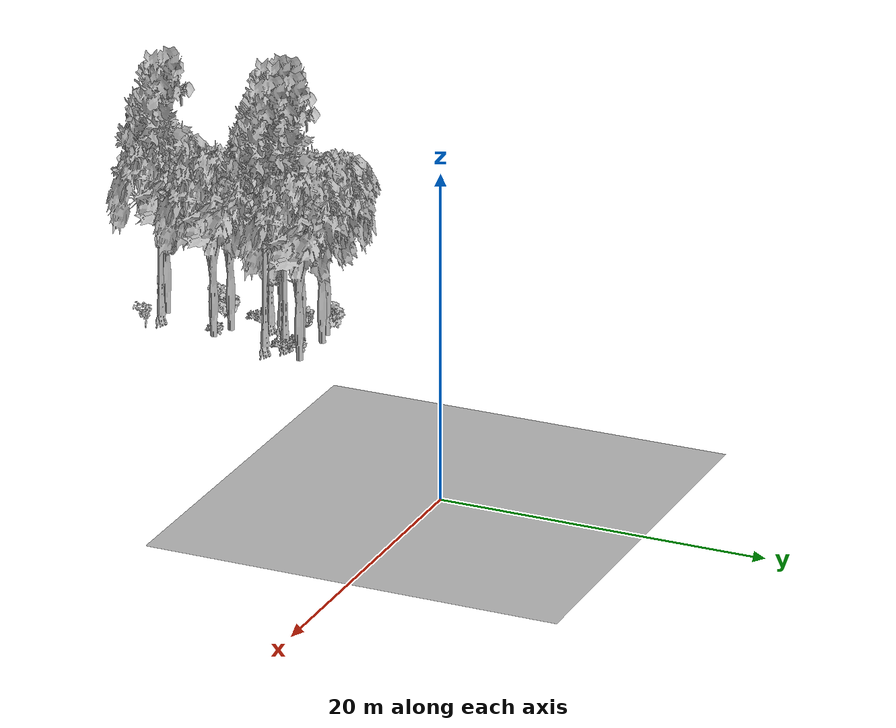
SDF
<sdf version="1.7">
 <world name="default">
  <model name="ground_plane">
   <static>1</static>
   <link name="link">
    <collision name="collision">
     <pose>-50 0 0 0 -0 0</pose>
     <geometry><plane><normal>0 0 1</normal><size>80 80</size></plane></geometry>
     <surface><contact><ode><min_depth>0.01</min_depth><max_vel>0</max_vel></ode></contact></surface>
    </collision>
    <visual name="grass">
     <cast_shadows>0</cast_shadows>
     <geometry>
      <mesh>
       <scale>0.46714285714285714 0.46714285714285714 0.1</scale>
       <uri>file://grass_plane/meshes/grass_plane.dae</uri>
      </mesh>
     </geometry>
    </visual>
   </link>
  </model>
  <model name="Tree 50">
   <static>1</static>
   <pose>-16.626667072718373 -22.54979244939139 0 1.57079 -0 0</pose>
   <link name="link">
    <collision name="collision">
     <geometry><mesh><scale>3.5 5 3.5</scale><uri>model://tree_2/meshes/tree_2.obj</uri></mesh></geometry>
    </collision>
    <visual name="visual">
     <geometry><mesh><scale>3.5 5 3.5</scale><uri>model://tree_2/meshes/tree_2.obj</uri></mesh></geometry>
    </visual>
   </link>
  </model>
  <model name="Tree 150">
   <static>1</static>
   <pose>-16.310011406077734 -18.973667269832262 0 1.57079 -0 0</pose>
   <link name="link">
    <collision name="collision">
     <geometry><mesh><scale>3.5 5 3.5</scale><uri>model://tree_9/meshes/tree_9.obj</uri></mesh></geometry>
    </collision>
    <visual name="visual">
     <geometry><mesh><scale>3.5 5 3.5</scale><uri>model://tree_9/meshes/tree_9.obj</uri></mesh></geometry>
    </visual>
   </link>
  </model>
  <model name="Tree 182">
   <static>1</static>
   <pose>-19.667358923343688 -19.440795146969876 0 1.57079 -0 0</pose>
   <link name="link">
    <collision name="collision">
     <geometry><mesh><scale>3.5 5 3.5</scale><uri>model://tree_9/meshes/tree_9.obj</uri></mesh></geometry>
    </collision>
    <visual name="visual">
     <geometry><mesh><scale>3.5 5 3.5</scale><uri>model://tree_9/meshes/tree_9.obj</uri></mesh></geometry>
    </visual>
   </link>
  </model>
  <model name="Tree 201">
   <static>1</static>
   <pose>-18.37955348961651 -16.061264425485682 0 1.57079 -0 0</pose>
   <link name="link">
    <collision name="collision">
     <geometry><mesh><scale>3.5 5 3.5</scale><uri>model://tree_2/meshes/tree_2.obj</uri></mesh></geometry>
    </collision>
    <visual name="visual">
     <geometry><mesh><scale>3.5 5 3.5</scale><uri>model://tree_2/meshes/tree_2.obj</uri></mesh></geometry>
    </visual>
   </link>
  </model>
  <model name="Tree 213">
   <static>1</static>
   <pose>-17.944141478230055 -22.019257441684026 0 1.57079 -0 0</pose>
   <link name="link">
    <collision name="collision">
     <geometry><mesh><scale>3.5 5 3.5</scale><uri>model://tree_2/meshes/tree_2.obj</uri></mesh></geometry>
    </collision>
    <visual name="visual">
     <geometry><mesh><scale>3.5 5 3.5</scale><uri>model://tree_2/meshes/tree_2.obj</uri></mesh></geometry>
    </visual>
   </link>
  </model>
  <model name="Tree 215">
   <static>1</static>
   <pose>-19.70228621881664 -20.199288571640235 0 1.57079 -0 0</pose>
   <link name="link">
    <collision name="collision">
     <geometry><mesh><scale>3.5 5 3.5</scale><uri>model://tree_9/meshes/tree_9.obj</uri></mesh></geometry>
    </collision>
    <visual name="visual">
     <geometry><mesh><scale>3.5 5 3.5</scale><uri>model://tree_9/meshes/tree_9.obj</uri></mesh></geometry>
    </visual>
   </link>
  </model>
  <model name="Tree 271">
   <static>1</static>
   <pose>-17.362453795548557 -18.125926451717618 0 1.57079 -0 0</pose>
   <link name="link">
    <collision name="collision">
     <geometry><mesh><scale>3.5 5 3.5</scale><uri>model://tree_9/meshes/tree_9.obj</uri></mesh></geometry>
    </collision>
    <visual name="visual">
     <geometry><mesh><scale>3.5 5 3.5</scale><uri>model://tree_9/meshes/tree_9.obj</uri></mesh></geometry>
    </visual>
   </link>
  </model>
  <model name="Tree 335">
   <static>1</static>
   <pose>-15.353108121630868 -16.16938496811955 0 1.57079 -0 0</pose>
   <link name="link">
    <collision name="collision">
     <geometry><mesh><scale>3.5 5 3.5</scale><uri>model://tree_2/meshes/tree_2.obj</uri></mesh></geometry>
    </collision>
    <visual name="visual">
     <geometry><mesh><scale>3.5 5 3.5</scale><uri>model://tree_2/meshes/tree_2.obj</uri></mesh></geometry>
    </visual>
   </link>
  </model>
  <model name="Tree 394">
   <static>1</static>
   <pose>-18.251344913268277 -26.98022130195796 0 1.57079 -0 0</pose>
   <link name="link">
    <collision name="collision">
     <geometry><mesh><scale>3.5 5 3.5</scale><uri>model://tree_9/meshes/tree_9.obj</uri></mesh></geometry>
    </collision>
    <visual name="visual">
     <geometry><mesh><scale>3.5 5 3.5</scale><uri>model://tree_9/meshes/tree_9.obj</uri></mesh></geometry>
    </visual>
   </link>
  </model>
  <model name="Tree 439">
   <static>1</static>
   <pose>-19.594993752110128 -16.336075024426684 0 1.57079 -0 0</pose>
   <link name="link">
    <collision name="collision">
     <geometry><mesh><scale>3.5 5 3.5</scale><uri>model://tree_2/meshes/tree_2.obj</uri></mesh></geometry>
    </collision>
    <visual name="visual">
     <geometry><mesh><scale>3.5 5 3.5</scale><uri>model://tree_2/meshes/tree_2.obj</uri></mesh></geometry>
    </visual>
   </link>
  </model>
  <model name="Tree 580">
   <static>1</static>
   <pose>-18.372744502222034 -17.438244996098824 0 1.57079 -0 0</pose>
   <link name="link">
    <collision name="collision">
     <geometry><mesh><scale>3.5 5 3.5</scale><uri>model://tree_2/meshes/tree_2.obj</uri></mesh></geometry>
    </collision>
    <visual name="visual">
     <geometry><mesh><scale>3.5 5 3.5</scale><uri>model://tree_2/meshes/tree_2.obj</uri></mesh></geometry>
    </visual>
   </link>
  </model>
  <model name="Tree 590">
   <static>1</static>
   <pose>-18.818137408470065 -26.818504450920795 0 1.57079 -0 0</pose>
   <link name="link">
    <collision name="collision">
     <geometry><mesh><scale>3.5 5 3.5</scale><uri>model://tree_2/meshes/tree_2.obj</uri></mesh></geometry>
    </collision>
    <visual name="visual">
     <geometry><mesh><scale>3.5 5 3.5</scale><uri>model://tree_2/meshes/tree_2.obj</uri></mesh></geometry>
    </visual>
   </link>
  </model>
  <model name="Bush 90">
   <static>1</static>
   <pose>-17.673946914427646 -23.004151485930286 0 1.57079 -0 0</pose>
   <link name="link">
    <collision name="collision">
     <geometry><mesh><scale>2 2 2</scale><uri>model://bush_2/meshes/bush_2.obj</uri></mesh></geometry>
     <surface><contact><collide_without_contact>false</collide_without_contact></contact></surface>
    </collision>
    <visual name="visual">
     <geometry><mesh><scale>2 2 2</scale><uri>model://bush_2/meshes/bush_2.obj</uri></mesh></geometry>
    </visual>
   </link>
  </model>
  <model name="Bush 135">
   <static>1</static>
   <pose>-16.01486205205037 -26.918148045619354 0 1.57079 -0 0</pose>
   <link name="link">
    <collision name="collision">
     <geometry><mesh><scale>2 2 2</scale><uri>model://bush_5/meshes/bush_5.obj</uri></mesh></geometry>
     <surface><contact><collide_without_contact>false</collide_without_contact></contact></surface>
    </collision>
    <visual name="visual">
     <geometry><mesh><scale>2 2 2</scale><uri>model://bush_5/meshes/bush_5.obj</uri></mesh></geometry>
    </visual>
   </link>
  </model>
  <model name="Bush 291">
   <static>1</static>
   <pose>-16.958633340671305 -18.287929123780255 0 1.57079 -0 0</pose>
   <link name="link">
    <collision name="collision">
     <geometry><mesh><scale>2 2 2</scale><uri>model://bush_2/meshes/bush_2.obj</uri></mesh></geometry>
     <surface><contact><collide_without_contact>false</collide_without_contact></contact></surface>
    </collision>
    <visual name="visual">
     <geometry><mesh><scale>2 2 2</scale><uri>model://bush_2/meshes/bush_2.obj</uri></mesh></geometry>
    </visual>
   </link>
  </model>
  <model name="Bush 326">
   <static>1</static>
   <pose>-20.25275439748072 -16.491217549874175 0 1.57079 -0 0</pose>
   <link name="link">
    <collision name="collision">
     <geometry><mesh><scale>2 2 2</scale><uri>model://bush_1/meshes/bush_1.obj</uri></mesh></geometry>
     <surface><contact><collide_without_contact>false</collide_without_contact></contact></surface>
    </collision>
    <visual name="visual">
     <geometry><mesh><scale>2 2 2</scale><uri>model://bush_1/meshes/bush_1.obj</uri></mesh></geometry>
    </visual>
   </link>
  </model>
  <model name="Bush 369">
   <static>1</static>
   <pose>-17.059193135146664 -17.82346685618398 0 1.57079 -0 0</pose>
   <link name="link">
    <collision name="collision">
     <geometry><mesh><scale>2 2 2</scale><uri>model://bush_2/meshes/bush_2.obj</uri></mesh></geometry>
     <surface><contact><collide_without_contact>false</collide_without_contact></contact></surface>
    </collision>
    <visual name="visual">
     <geometry><mesh><scale>2 2 2</scale><uri>model://bush_2/meshes/bush_2.obj</uri></mesh></geometry>
    </visual>
   </link>
  </model>
  <model name="Bush 390">
   <static>1</static>
   <pose>-17.294370446192882 -17.17940311306795 0 1.57079 -0 0</pose>
   <link name="link">
    <collision name="collision">
     <geometry><mesh><scale>2 2 2</scale><uri>model://bush_2/meshes/bush_2.obj</uri></mesh></geometry>
     <surface><contact><collide_without_contact>false</collide_without_contact></contact></surface>
    </collision>
    <visual name="visual">
     <geometry><mesh><scale>2 2 2</scale><uri>model://bush_2/meshes/bush_2.obj</uri></mesh></geometry>
    </visual>
   </link>
  </model>
  <model name="Bush 414">
   <static>1</static>
   <pose>-20.391690227395298 -21.581318626229972 0 1.57079 -0 0</pose>
   <link name="link">
    <collision name="collision">
     <geometry><mesh><scale>2 2 2</scale><uri>model://bush_2/meshes/bush_2.obj</uri></mesh></geometry>
     <surface><contact><collide_without_contact>false</collide_without_contact></contact></surface>
    </collision>
    <visual name="visual">
     <geometry><mesh><scale>2 2 2</scale><uri>model://bush_2/meshes/bush_2.obj</uri></mesh></geometry>
    </visual>
   </link>
  </model>
  <model name="Bush 445">
   <static>1</static>
   <pose>-20.712460655937438 -24.138218878179707 0 1.57079 -0 0</pose>
   <link name="link">
    <collision name="collision">
     <geometry><mesh><scale>2 2 2</scale><uri>model://bush_5/meshes/bush_5.obj</uri></mesh></geometry>
     <surface><contact><collide_without_contact>false</collide_without_contact></contact></surface>
    </collision>
    <visual name="visual">
     <geometry><mesh><scale>2 2 2</scale><uri>model://bush_5/meshes/bush_5.obj</uri></mesh></geometry>
    </visual>
   </link>
  </model>
  <model name="Bush 446">
   <static>1</static>
   <pose>-20.130542536581345 -17.965172970362406 0 1.57079 -0 0</pose>
   <link name="link">
    <collision name="collision">
     <geometry><mesh><scale>2 2 2</scale><uri>model://bush_4/meshes/bush_4.obj</uri></mesh></geometry>
     <surface><contact><collide_without_contact>false</collide_without_contact></contact></surface>
    </collision>
    <visual name="visual">
     <geometry><mesh><scale>2 2 2</scale><uri>model://bush_4/meshes/bush_4.obj</uri></mesh></geometry>
    </visual>
   </link>
  </model>
  <model name="Bush 504">
   <static>1</static>
   <pose>-18.026093966094802 -17.62917447600616 0 1.57079 -0 0</pose>
   <link name="link">
    <collision name="collision">
     <geometry><mesh><scale>2 2 2</scale><uri>model://bush_2/meshes/bush_2.obj</uri></mesh></geometry>
     <surface><contact><collide_without_contact>false</collide_without_contact></contact></surface>
    </collision>
    <visual name="visual">
     <geometry><mesh><scale>2 2 2</scale><uri>model://bush_2/meshes/bush_2.obj</uri></mesh></geometry>
    </visual>
   </link>
  </model>
  <model name="Bush 523">
   <static>1</static>
   <pose>-19.45936153051512 -23.19595254523869 0 1.57079 -0 0</pose>
   <link name="link">
    <collision name="collision">
     <geometry><mesh><scale>2 2 2</scale><uri>model://bush_1/meshes/bush_1.obj</uri></mesh></geometry>
     <surface><contact><collide_without_contact>false</collide_without_contact></contact></surface>
    </collision>
    <visual name="visual">
     <geometry><mesh><scale>2 2 2</scale><uri>model://bush_1/meshes/bush_1.obj</uri></mesh></geometry>
    </visual>
   </link>
  </model>
 </world>
</sdf>
